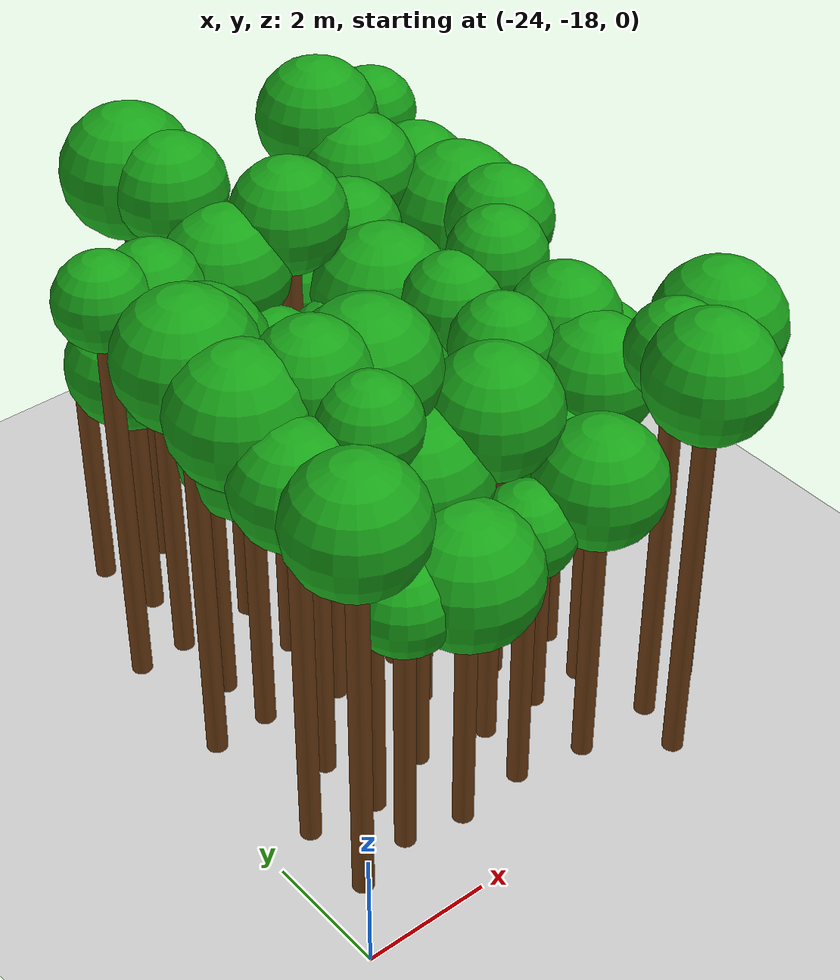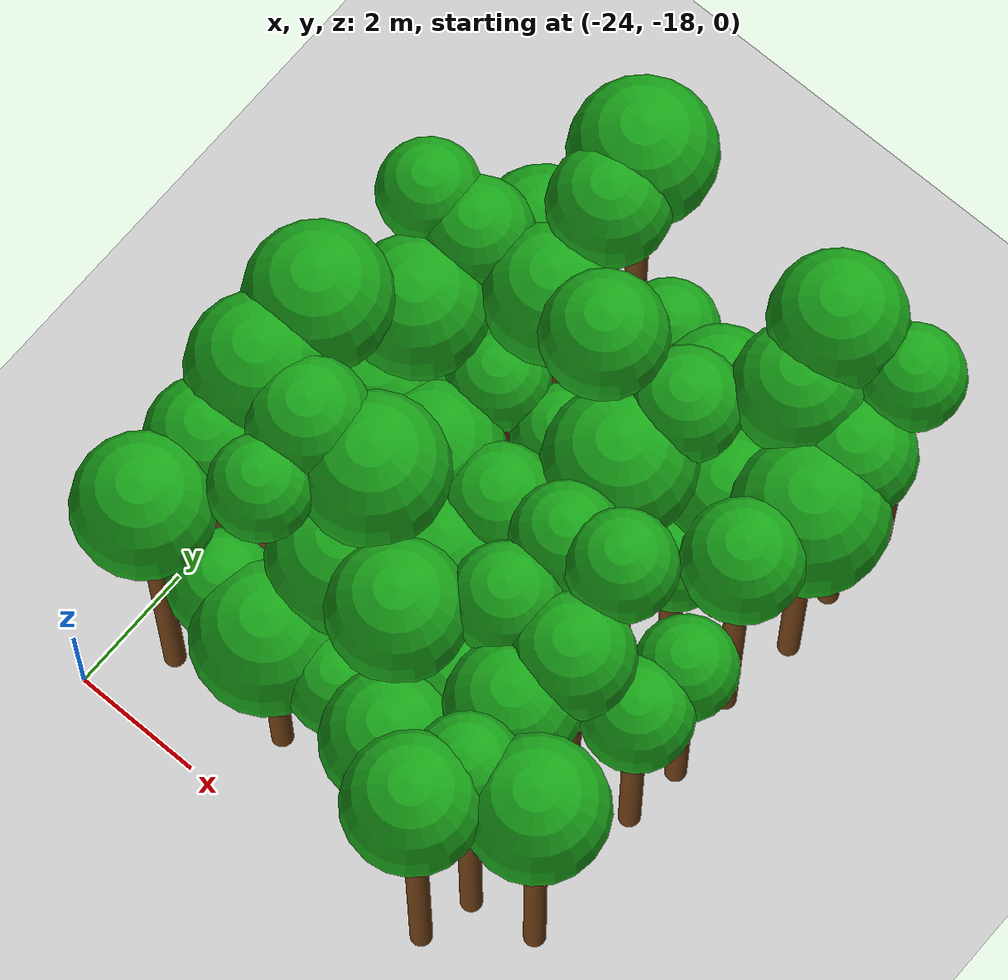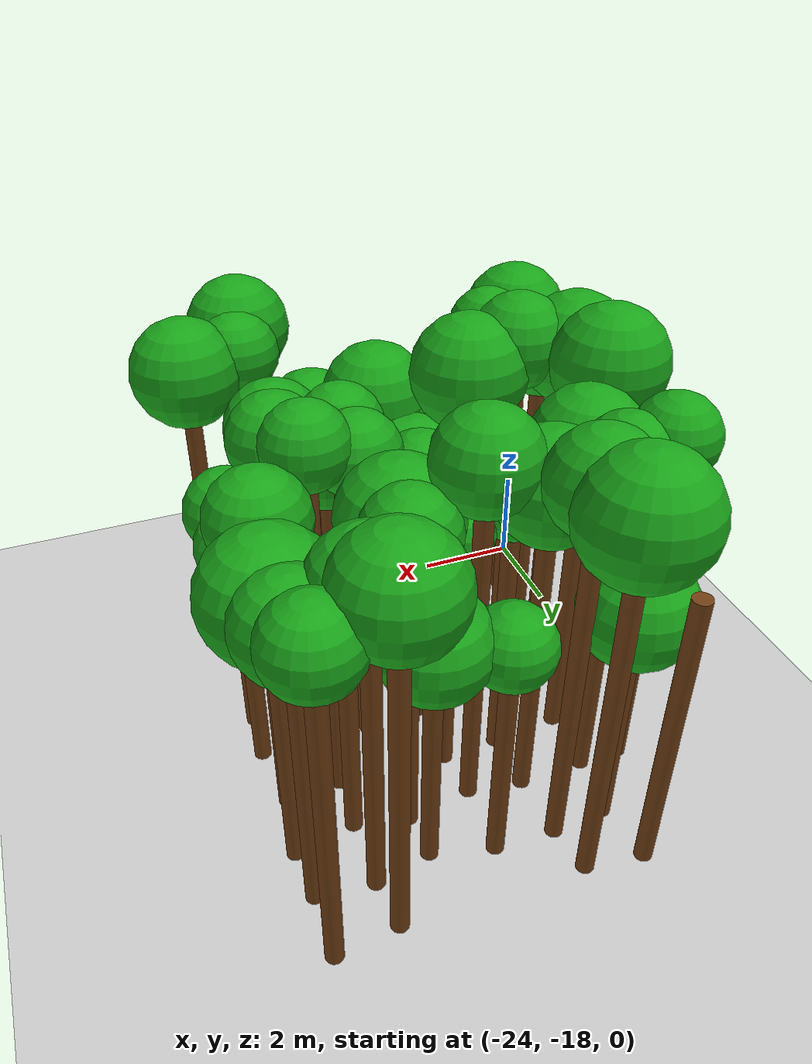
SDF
<sdf version="1.6">
 <world name="forest_world">
  <include><uri>model://sun</uri></include>
  <include><uri>model://ground_plane</uri></include>
  <model name="tree_342_trunk">
   <static>true</static>
   <pose>-23.26 -16.91 3.03 0 0 0</pose>
   <link name="link">
    <collision name="collision">
     <geometry><cylinder><radius>0.16</radius><length>6.07</length></cylinder></geometry>
    </collision>
    <visual name="visual">
     <geometry><cylinder><radius>0.16</radius><length>6.07</length></cylinder></geometry>
     <material><ambient>0.35 0.20 0.05 1</ambient><diffuse>0.45 0.25 0.08 1</diffuse></material>
    </visual>
   </link>
  </model>
  <model name="tree_342_leaf">
   <static>true</static>
   <pose>-23.26 -16.91 6.66 0 0 0</pose>
   <link name="link">
    <collision name="collision"><geometry><sphere><radius>0.98</radius></sphere></geometry></collision>
    <visual name="visual">
     <geometry><sphere><radius>0.98</radius></sphere></geometry>
     <material><ambient>0.05 0.45 0.05 1</ambient><diffuse>0.10 0.65 0.10 1</diffuse></material>
    </visual>
   </link>
  </model>
  <model name="tree_343_trunk">
   <static>true</static>
   <pose>-23.24 -15.67 2.97 0 0 0</pose>
   <link name="link">
    <collision name="collision">
     <geometry><cylinder><radius>0.16</radius><length>5.94</length></cylinder></geometry>
    </collision>
    <visual name="visual">
     <geometry><cylinder><radius>0.16</radius><length>5.94</length></cylinder></geometry>
     <material><ambient>0.35 0.20 0.05 1</ambient><diffuse>0.45 0.25 0.08 1</diffuse></material>
    </visual>
   </link>
  </model>
  <model name="tree_343_leaf">
   <static>true</static>
   <pose>-23.24 -15.67 6.48 0 0 0</pose>
   <link name="link">
    <collision name="collision"><geometry><sphere><radius>0.90</radius></sphere></geometry></collision>
    <visual name="visual">
     <geometry><sphere><radius>0.90</radius></sphere></geometry>
     <material><ambient>0.05 0.45 0.05 1</ambient><diffuse>0.10 0.65 0.10 1</diffuse></material>
    </visual>
   </link>
  </model>
  <model name="tree_344_leaf">
   <static>true</static>
   <pose>-23.29 -14.58 6.96 0 0 0</pose>
   <link name="link">
    <collision name="collision"><geometry><sphere><radius>1.01</radius></sphere></geometry></collision>
    <visual name="visual">
     <geometry><sphere><radius>1.01</radius></sphere></geometry>
     <material><ambient>0.05 0.45 0.05 1</ambient><diffuse>0.10 0.65 0.10 1</diffuse></material>
    </visual>
   </link>
  </model>
  <model name="tree_345_trunk">
   <static>true</static>
   <pose>-23.29 -13.42 3.29 0 0 0</pose>
   <link name="link">
    <collision name="collision">
     <geometry><cylinder><radius>0.16</radius><length>6.57</length></cylinder></geometry>
    </collision>
    <visual name="visual">
     <geometry><cylinder><radius>0.16</radius><length>6.57</length></cylinder></geometry>
     <material><ambient>0.35 0.20 0.05 1</ambient><diffuse>0.45 0.25 0.08 1</diffuse></material>
    </visual>
   </link>
  </model>
  <model name="tree_345_leaf">
   <static>true</static>
   <pose>-23.29 -13.42 7.18 0 0 0</pose>
   <link name="link">
    <collision name="collision"><geometry><sphere><radius>1.02</radius></sphere></geometry></collision>
    <visual name="visual">
     <geometry><sphere><radius>1.02</radius></sphere></geometry>
     <material><ambient>0.05 0.45 0.05 1</ambient><diffuse>0.10 0.65 0.10 1</diffuse></material>
    </visual>
   </link>
  </model>
  <model name="tree_347_trunk">
   <static>true</static>
   <pose>-23.22 -11.30 3.25 0 0 0</pose>
   <link name="link">
    <collision name="collision">
     <geometry><cylinder><radius>0.16</radius><length>6.51</length></cylinder></geometry>
    </collision>
    <visual name="visual">
     <geometry><cylinder><radius>0.16</radius><length>6.51</length></cylinder></geometry>
     <material><ambient>0.35 0.20 0.05 1</ambient><diffuse>0.45 0.25 0.08 1</diffuse></material>
    </visual>
   </link>
  </model>
  <model name="tree_347_leaf">
   <static>true</static>
   <pose>-23.22 -11.30 6.94 0 0 0</pose>
   <link name="link">
    <collision name="collision"><geometry><sphere><radius>0.72</radius></sphere></geometry></collision>
    <visual name="visual">
     <geometry><sphere><radius>0.72</radius></sphere></geometry>
     <material><ambient>0.05 0.45 0.05 1</ambient><diffuse>0.10 0.65 0.10 1</diffuse></material>
    </visual>
   </link>
  </model>
  <model name="tree_397_trunk">
   <static>true</static>
   <pose>-22.28 -16.64 2.09 0 0 0</pose>
   <link name="link">
    <collision name="collision">
     <geometry><cylinder><radius>0.16</radius><length>4.17</length></cylinder></geometry>
    </collision>
    <visual name="visual">
     <geometry><cylinder><radius>0.16</radius><length>4.17</length></cylinder></geometry>
     <material><ambient>0.35 0.20 0.05 1</ambient><diffuse>0.45 0.25 0.08 1</diffuse></material>
    </visual>
   </link>
  </model>
  <model name="tree_397_leaf">
   <static>true</static>
   <pose>-22.28 -16.64 4.64 0 0 0</pose>
   <link name="link">
    <collision name="collision"><geometry><sphere><radius>0.77</radius></sphere></geometry></collision>
    <visual name="visual">
     <geometry><sphere><radius>0.77</radius></sphere></geometry>
     <material><ambient>0.05 0.45 0.05 1</ambient><diffuse>0.10 0.65 0.10 1</diffuse></material>
    </visual>
   </link>
  </model>
  <model name="tree_398_trunk">
   <static>true</static>
   <pose>-22.18 -15.83 3.29 0 0 0</pose>
   <link name="link">
    <collision name="collision">
     <geometry><cylinder><radius>0.16</radius><length>6.58</length></cylinder></geometry>
    </collision>
    <visual name="visual">
     <geometry><cylinder><radius>0.16</radius><length>6.58</length></cylinder></geometry>
     <material><ambient>0.35 0.20 0.05 1</ambient><diffuse>0.45 0.25 0.08 1</diffuse></material>
    </visual>
   </link>
  </model>
  <model name="tree_398_leaf">
   <static>true</static>
   <pose>-22.18 -15.83 7.01 0 0 0</pose>
   <link name="link">
    <collision name="collision"><geometry><sphere><radius>0.72</radius></sphere></geometry></collision>
    <visual name="visual">
     <geometry><sphere><radius>0.72</radius></sphere></geometry>
     <material><ambient>0.05 0.45 0.05 1</ambient><diffuse>0.10 0.65 0.10 1</diffuse></material>
    </visual>
   </link>
  </model>
  <model name="tree_399_trunk">
   <static>true</static>
   <pose>-22.28 -14.77 3.34 0 0 0</pose>
   <link name="link">
    <collision name="collision">
     <geometry><cylinder><radius>0.16</radius><length>6.67</length></cylinder></geometry>
    </collision>
    <visual name="visual">
     <geometry><cylinder><radius>0.16</radius><length>6.67</length></cylinder></geometry>
     <material><ambient>0.35 0.20 0.05 1</ambient><diffuse>0.45 0.25 0.08 1</diffuse></material>
    </visual>
   </link>
  </model>
  <model name="tree_399_leaf">
   <static>true</static>
   <pose>-22.28 -14.77 7.18 0 0 0</pose>
   <link name="link">
    <collision name="collision"><geometry><sphere><radius>0.85</radius></sphere></geometry></collision>
    <visual name="visual">
     <geometry><sphere><radius>0.85</radius></sphere></geometry>
     <material><ambient>0.05 0.45 0.05 1</ambient><diffuse>0.10 0.65 0.10 1</diffuse></material>
    </visual>
   </link>
  </model>
  <model name="tree_400_trunk">
   <static>true</static>
   <pose>-22.37 -13.39 2.30 0 0 0</pose>
   <link name="link">
    <collision name="collision">
     <geometry><cylinder><radius>0.16</radius><length>4.61</length></cylinder></geometry>
    </collision>
    <visual name="visual">
     <geometry><cylinder><radius>0.16</radius><length>4.61</length></cylinder></geometry>
     <material><ambient>0.35 0.20 0.05 1</ambient><diffuse>0.45 0.25 0.08 1</diffuse></material>
    </visual>
   </link>
  </model>
  <model name="tree_400_leaf">
   <static>true</static>
   <pose>-22.37 -13.39 5.23 0 0 0</pose>
   <link name="link">
    <collision name="collision"><geometry><sphere><radius>1.04</radius></sphere></geometry></collision>
    <visual name="visual">
     <geometry><sphere><radius>1.04</radius></sphere></geometry>
     <material><ambient>0.05 0.45 0.05 1</ambient><diffuse>0.10 0.65 0.10 1</diffuse></material>
    </visual>
   </link>
  </model>
  <model name="tree_401_trunk">
   <static>true</static>
   <pose>-22.44 -12.47 2.89 0 0 0</pose>
   <link name="link">
    <collision name="collision">
     <geometry><cylinder><radius>0.16</radius><length>5.77</length></cylinder></geometry>
    </collision>
    <visual name="visual">
     <geometry><cylinder><radius>0.16</radius><length>5.77</length></cylinder></geometry>
     <material><ambient>0.35 0.20 0.05 1</ambient><diffuse>0.45 0.25 0.08 1</diffuse></material>
    </visual>
   </link>
  </model>
  <model name="tree_401_leaf">
   <static>true</static>
   <pose>-22.44 -12.47 6.36 0 0 0</pose>
   <link name="link">
    <collision name="collision"><geometry><sphere><radius>0.99</radius></sphere></geometry></collision>
    <visual name="visual">
     <geometry><sphere><radius>0.99</radius></sphere></geometry>
     <material><ambient>0.05 0.45 0.05 1</ambient><diffuse>0.10 0.65 0.10 1</diffuse></material>
    </visual>
   </link>
  </model>
  <model name="tree_402_trunk">
   <static>true</static>
   <pose>-22.41 -11.28 3.12 0 0 0</pose>
   <link name="link">
    <collision name="collision">
     <geometry><cylinder><radius>0.16</radius><length>6.25</length></cylinder></geometry>
    </collision>
    <visual name="visual">
     <geometry><cylinder><radius>0.16</radius><length>6.25</length></cylinder></geometry>
     <material><ambient>0.35 0.20 0.05 1</ambient><diffuse>0.45 0.25 0.08 1</diffuse></material>
    </visual>
   </link>
  </model>
  <model name="tree_402_leaf">
   <static>true</static>
   <pose>-22.41 -11.28 6.72 0 0 0</pose>
   <link name="link">
    <collision name="collision"><geometry><sphere><radius>0.78</radius></sphere></geometry></collision>
    <visual name="visual">
     <geometry><sphere><radius>0.78</radius></sphere></geometry>
     <material><ambient>0.05 0.45 0.05 1</ambient><diffuse>0.10 0.65 0.10 1</diffuse></material>
    </visual>
   </link>
  </model>
  <model name="tree_403_trunk">
   <static>true</static>
   <pose>-22.22 -10.14 2.07 0 0 0</pose>
   <link name="link">
    <collision name="collision">
     <geometry><cylinder><radius>0.16</radius><length>4.15</length></cylinder></geometry>
    </collision>
    <visual name="visual">
     <geometry><cylinder><radius>0.16</radius><length>4.15</length></cylinder></geometry>
     <material><ambient>0.35 0.20 0.05 1</ambient><diffuse>0.45 0.25 0.08 1</diffuse></material>
    </visual>
   </link>
  </model>
  <model name="tree_403_leaf">
   <static>true</static>
   <pose>-22.22 -10.14 4.74 0 0 0</pose>
   <link name="link">
    <collision name="collision"><geometry><sphere><radius>0.98</radius></sphere></geometry></collision>
    <visual name="visual">
     <geometry><sphere><radius>0.98</radius></sphere></geometry>
     <material><ambient>0.05 0.45 0.05 1</ambient><diffuse>0.10 0.65 0.10 1</diffuse></material>
    </visual>
   </link>
  </model>
  <model name="tree_404_trunk">
   <static>true</static>
   <pose>-22.42 -9.04 2.87 0 0 0</pose>
   <link name="link">
    <collision name="collision">
     <geometry><cylinder><radius>0.16</radius><length>5.74</length></cylinder></geometry>
    </collision>
    <visual name="visual">
     <geometry><cylinder><radius>0.16</radius><length>5.74</length></cylinder></geometry>
     <material><ambient>0.35 0.20 0.05 1</ambient><diffuse>0.45 0.25 0.08 1</diffuse></material>
    </visual>
   </link>
  </model>
  <model name="tree_452_trunk">
   <static>true</static>
   <pose>-21.34 -16.81 2.02 0 0 0</pose>
   <link name="link">
    <collision name="collision">
     <geometry><cylinder><radius>0.16</radius><length>4.05</length></cylinder></geometry>
    </collision>
    <visual name="visual">
     <geometry><cylinder><radius>0.16</radius><length>4.05</length></cylinder></geometry>
     <material><ambient>0.35 0.20 0.05 1</ambient><diffuse>0.45 0.25 0.08 1</diffuse></material>
    </visual>
   </link>
  </model>
  <model name="tree_452_leaf">
   <static>true</static>
   <pose>-21.34 -16.81 4.68 0 0 0</pose>
   <link name="link">
    <collision name="collision"><geometry><sphere><radius>1.06</radius></sphere></geometry></collision>
    <visual name="visual">
     <geometry><sphere><radius>1.06</radius></sphere></geometry>
     <material><ambient>0.05 0.45 0.05 1</ambient><diffuse>0.10 0.65 0.10 1</diffuse></material>
    </visual>
   </link>
  </model>
  <model name="tree_453_trunk">
   <static>true</static>
   <pose>-21.11 -15.52 2.40 0 0 0</pose>
   <link name="link">
    <collision name="collision">
     <geometry><cylinder><radius>0.16</radius><length>4.80</length></cylinder></geometry>
    </collision>
    <visual name="visual">
     <geometry><cylinder><radius>0.16</radius><length>4.80</length></cylinder></geometry>
     <material><ambient>0.35 0.20 0.05 1</ambient><diffuse>0.45 0.25 0.08 1</diffuse></material>
    </visual>
   </link>
  </model>
  <model name="tree_453_leaf">
   <static>true</static>
   <pose>-21.11 -15.52 5.43 0 0 0</pose>
   <link name="link">
    <collision name="collision"><geometry><sphere><radius>1.05</radius></sphere></geometry></collision>
    <visual name="visual">
     <geometry><sphere><radius>1.05</radius></sphere></geometry>
     <material><ambient>0.05 0.45 0.05 1</ambient><diffuse>0.10 0.65 0.10 1</diffuse></material>
    </visual>
   </link>
  </model>
  <model name="tree_454_trunk">
   <static>true</static>
   <pose>-21.30 -14.66 3.09 0 0 0</pose>
   <link name="link">
    <collision name="collision">
     <geometry><cylinder><radius>0.16</radius><length>6.17</length></cylinder></geometry>
    </collision>
    <visual name="visual">
     <geometry><cylinder><radius>0.16</radius><length>6.17</length></cylinder></geometry>
     <material><ambient>0.35 0.20 0.05 1</ambient><diffuse>0.45 0.25 0.08 1</diffuse></material>
    </visual>
   </link>
  </model>
  <model name="tree_454_leaf">
   <static>true</static>
   <pose>-21.30 -14.66 6.80 0 0 0</pose>
   <link name="link">
    <collision name="collision"><geometry><sphere><radius>1.04</radius></sphere></geometry></collision>
    <visual name="visual">
     <geometry><sphere><radius>1.04</radius></sphere></geometry>
     <material><ambient>0.05 0.45 0.05 1</ambient><diffuse>0.10 0.65 0.10 1</diffuse></material>
    </visual>
   </link>
  </model>
  <model name="tree_455_trunk">
   <static>true</static>
   <pose>-21.20 -13.65 2.37 0 0 0</pose>
   <link name="link">
    <collision name="collision">
     <geometry><cylinder><radius>0.16</radius><length>4.74</length></cylinder></geometry>
    </collision>
    <visual name="visual">
     <geometry><cylinder><radius>0.16</radius><length>4.74</length></cylinder></geometry>
     <material><ambient>0.35 0.20 0.05 1</ambient><diffuse>0.45 0.25 0.08 1</diffuse></material>
    </visual>
   </link>
  </model>
  <model name="tree_455_leaf">
   <static>true</static>
   <pose>-21.20 -13.65 5.35 0 0 0</pose>
   <link name="link">
    <collision name="collision"><geometry><sphere><radius>1.02</radius></sphere></geometry></collision>
    <visual name="visual">
     <geometry><sphere><radius>1.02</radius></sphere></geometry>
     <material><ambient>0.05 0.45 0.05 1</ambient><diffuse>0.10 0.65 0.10 1</diffuse></material>
    </visual>
   </link>
  </model>
  <model name="tree_456_trunk">
   <static>true</static>
   <pose>-21.13 -12.36 2.61 0 0 0</pose>
   <link name="link">
    <collision name="collision">
     <geometry><cylinder><radius>0.16</radius><length>5.23</length></cylinder></geometry>
    </collision>
    <visual name="visual">
     <geometry><cylinder><radius>0.16</radius><length>5.23</length></cylinder></geometry>
     <material><ambient>0.35 0.20 0.05 1</ambient><diffuse>0.45 0.25 0.08 1</diffuse></material>
    </visual>
   </link>
  </model>
  <model name="tree_456_leaf">
   <static>true</static>
   <pose>-21.13 -12.36 5.66 0 0 0</pose>
   <link name="link">
    <collision name="collision"><geometry><sphere><radius>0.71</radius></sphere></geometry></collision>
    <visual name="visual">
     <geometry><sphere><radius>0.71</radius></sphere></geometry>
     <material><ambient>0.05 0.45 0.05 1</ambient><diffuse>0.10 0.65 0.10 1</diffuse></material>
    </visual>
   </link>
  </model>
  <model name="tree_457_trunk">
   <static>true</static>
   <pose>-21.15 -11.25 2.99 0 0 0</pose>
   <link name="link">
    <collision name="collision">
     <geometry><cylinder><radius>0.16</radius><length>5.98</length></cylinder></geometry>
    </collision>
    <visual name="visual">
     <geometry><cylinder><radius>0.16</radius><length>5.98</length></cylinder></geometry>
     <material><ambient>0.35 0.20 0.05 1</ambient><diffuse>0.45 0.25 0.08 1</diffuse></material>
    </visual>
   </link>
  </model>
  <model name="tree_457_leaf">
   <static>true</static>
   <pose>-21.15 -11.25 6.56 0 0 0</pose>
   <link name="link">
    <collision name="collision"><geometry><sphere><radius>0.96</radius></sphere></geometry></collision>
    <visual name="visual">
     <geometry><sphere><radius>0.96</radius></sphere></geometry>
     <material><ambient>0.05 0.45 0.05 1</ambient><diffuse>0.10 0.65 0.10 1</diffuse></material>
    </visual>
   </link>
  </model>
  <model name="tree_458_trunk">
   <static>true</static>
   <pose>-21.20 -10.04 3.41 0 0 0</pose>
   <link name="link">
    <collision name="collision">
     <geometry><cylinder><radius>0.16</radius><length>6.82</length></cylinder></geometry>
    </collision>
    <visual name="visual">
     <geometry><cylinder><radius>0.16</radius><length>6.82</length></cylinder></geometry>
     <material><ambient>0.35 0.20 0.05 1</ambient><diffuse>0.45 0.25 0.08 1</diffuse></material>
    </visual>
   </link>
  </model>
  <model name="tree_458_leaf">
   <static>true</static>
   <pose>-21.20 -10.04 7.33 0 0 0</pose>
   <link name="link">
    <collision name="collision"><geometry><sphere><radius>0.85</radius></sphere></geometry></collision>
    <visual name="visual">
     <geometry><sphere><radius>0.85</radius></sphere></geometry>
     <material><ambient>0.05 0.45 0.05 1</ambient><diffuse>0.10 0.65 0.10 1</diffuse></material>
    </visual>
   </link>
  </model>
  <model name="tree_459_trunk">
   <static>true</static>
   <pose>-21.35 -9.18 3.34 0 0 0</pose>
   <link name="link">
    <collision name="collision">
     <geometry><cylinder><radius>0.16</radius><length>6.68</length></cylinder></geometry>
    </collision>
    <visual name="visual">
     <geometry><cylinder><radius>0.16</radius><length>6.68</length></cylinder></geometry>
     <material><ambient>0.35 0.20 0.05 1</ambient><diffuse>0.45 0.25 0.08 1</diffuse></material>
    </visual>
   </link>
  </model>
  <model name="tree_459_leaf">
   <static>true</static>
   <pose>-21.35 -9.18 7.29 0 0 0</pose>
   <link name="link">
    <collision name="collision"><geometry><sphere><radius>1.02</radius></sphere></geometry></collision>
    <visual name="visual">
     <geometry><sphere><radius>1.02</radius></sphere></geometry>
     <material><ambient>0.05 0.45 0.05 1</ambient><diffuse>0.10 0.65 0.10 1</diffuse></material>
    </visual>
   </link>
  </model>
  <model name="tree_507_trunk">
   <static>true</static>
   <pose>-20.20 -16.71 2.17 0 0 0</pose>
   <link name="link">
    <collision name="collision">
     <geometry><cylinder><radius>0.16</radius><length>4.35</length></cylinder></geometry>
    </collision>
    <visual name="visual">
     <geometry><cylinder><radius>0.16</radius><length>4.35</length></cylinder></geometry>
     <material><ambient>0.35 0.20 0.05 1</ambient><diffuse>0.45 0.25 0.08 1</diffuse></material>
    </visual>
   </link>
  </model>
  <model name="tree_507_leaf">
   <static>true</static>
   <pose>-20.20 -16.71 4.77 0 0 0</pose>
   <link name="link">
    <collision name="collision"><geometry><sphere><radius>0.71</radius></sphere></geometry></collision>
    <visual name="visual">
     <geometry><sphere><radius>0.71</radius></sphere></geometry>
     <material><ambient>0.05 0.45 0.05 1</ambient><diffuse>0.10 0.65 0.10 1</diffuse></material>
    </visual>
   </link>
  </model>
  <model name="tree_508_trunk">
   <static>true</static>
   <pose>-19.97 -15.73 2.75 0 0 0</pose>
   <link name="link">
    <collision name="collision">
     <geometry><cylinder><radius>0.16</radius><length>5.51</length></cylinder></geometry>
    </collision>
    <visual name="visual">
     <geometry><cylinder><radius>0.16</radius><length>5.51</length></cylinder></geometry>
     <material><ambient>0.35 0.20 0.05 1</ambient><diffuse>0.45 0.25 0.08 1</diffuse></material>
    </visual>
   </link>
  </model>
  <model name="tree_508_leaf">
   <static>true</static>
   <pose>-19.97 -15.73 6.09 0 0 0</pose>
   <link name="link">
    <collision name="collision"><geometry><sphere><radius>0.97</radius></sphere></geometry></collision>
    <visual name="visual">
     <geometry><sphere><radius>0.97</radius></sphere></geometry>
     <material><ambient>0.05 0.45 0.05 1</ambient><diffuse>0.10 0.65 0.10 1</diffuse></material>
    </visual>
   </link>
  </model>
  <model name="tree_509_trunk">
   <static>true</static>
   <pose>-20.24 -14.55 2.19 0 0 0</pose>
   <link name="link">
    <collision name="collision">
     <geometry><cylinder><radius>0.16</radius><length>4.38</length></cylinder></geometry>
    </collision>
    <visual name="visual">
     <geometry><cylinder><radius>0.16</radius><length>4.38</length></cylinder></geometry>
     <material><ambient>0.35 0.20 0.05 1</ambient><diffuse>0.45 0.25 0.08 1</diffuse></material>
    </visual>
   </link>
  </model>
  <model name="tree_509_leaf">
   <static>true</static>
   <pose>-20.24 -14.55 5.04 0 0 0</pose>
   <link name="link">
    <collision name="collision"><geometry><sphere><radius>1.10</radius></sphere></geometry></collision>
    <visual name="visual">
     <geometry><sphere><radius>1.10</radius></sphere></geometry>
     <material><ambient>0.05 0.45 0.05 1</ambient><diffuse>0.10 0.65 0.10 1</diffuse></material>
    </visual>
   </link>
  </model>
  <model name="tree_510_trunk">
   <static>true</static>
   <pose>-20.03 -13.64 2.54 0 0 0</pose>
   <link name="link">
    <collision name="collision">
     <geometry><cylinder><radius>0.16</radius><length>5.07</length></cylinder></geometry>
    </collision>
    <visual name="visual">
     <geometry><cylinder><radius>0.16</radius><length>5.07</length></cylinder></geometry>
     <material><ambient>0.35 0.20 0.05 1</ambient><diffuse>0.45 0.25 0.08 1</diffuse></material>
    </visual>
   </link>
  </model>
  <model name="tree_510_leaf">
   <static>true</static>
   <pose>-20.03 -13.64 5.57 0 0 0</pose>
   <link name="link">
    <collision name="collision"><geometry><sphere><radius>0.82</radius></sphere></geometry></collision>
    <visual name="visual">
     <geometry><sphere><radius>0.82</radius></sphere></geometry>
     <material><ambient>0.05 0.45 0.05 1</ambient><diffuse>0.10 0.65 0.10 1</diffuse></material>
    </visual>
   </link>
  </model>
  <model name="tree_511_trunk">
   <static>true</static>
   <pose>-20.04 -12.32 2.44 0 0 0</pose>
   <link name="link">
    <collision name="collision">
     <geometry><cylinder><radius>0.16</radius><length>4.88</length></cylinder></geometry>
    </collision>
    <visual name="visual">
     <geometry><cylinder><radius>0.16</radius><length>4.88</length></cylinder></geometry>
     <material><ambient>0.35 0.20 0.05 1</ambient><diffuse>0.45 0.25 0.08 1</diffuse></material>
    </visual>
   </link>
  </model>
  <model name="tree_511_leaf">
   <static>true</static>
   <pose>-20.04 -12.32 5.32 0 0 0</pose>
   <link name="link">
    <collision name="collision"><geometry><sphere><radius>0.72</radius></sphere></geometry></collision>
    <visual name="visual">
     <geometry><sphere><radius>0.72</radius></sphere></geometry>
     <material><ambient>0.05 0.45 0.05 1</ambient><diffuse>0.10 0.65 0.10 1</diffuse></material>
    </visual>
   </link>
  </model>
  <model name="tree_512_trunk">
   <static>true</static>
   <pose>-20.14 -11.41 3.30 0 0 0</pose>
   <link name="link">
    <collision name="collision">
     <geometry><cylinder><radius>0.16</radius><length>6.61</length></cylinder></geometry>
    </collision>
    <visual name="visual">
     <geometry><cylinder><radius>0.16</radius><length>6.61</length></cylinder></geometry>
     <material><ambient>0.35 0.20 0.05 1</ambient><diffuse>0.45 0.25 0.08 1</diffuse></material>
    </visual>
   </link>
  </model>
  <model name="tree_512_leaf">
   <static>true</static>
   <pose>-20.14 -11.41 7.13 0 0 0</pose>
   <link name="link">
    <collision name="collision"><geometry><sphere><radius>0.87</radius></sphere></geometry></collision>
    <visual name="visual">
     <geometry><sphere><radius>0.87</radius></sphere></geometry>
     <material><ambient>0.05 0.45 0.05 1</ambient><diffuse>0.10 0.65 0.10 1</diffuse></material>
    </visual>
   </link>
  </model>
  <model name="tree_513_trunk">
   <static>true</static>
   <pose>-20.07 -10.08 2.15 0 0 0</pose>
   <link name="link">
    <collision name="collision">
     <geometry><cylinder><radius>0.16</radius><length>4.29</length></cylinder></geometry>
    </collision>
    <visual name="visual">
     <geometry><cylinder><radius>0.16</radius><length>4.29</length></cylinder></geometry>
     <material><ambient>0.35 0.20 0.05 1</ambient><diffuse>0.45 0.25 0.08 1</diffuse></material>
    </visual>
   </link>
  </model>
  <model name="tree_513_leaf">
   <static>true</static>
   <pose>-20.07 -10.08 4.72 0 0 0</pose>
   <link name="link">
    <collision name="collision"><geometry><sphere><radius>0.71</radius></sphere></geometry></collision>
    <visual name="visual">
     <geometry><sphere><radius>0.71</radius></sphere></geometry>
     <material><ambient>0.05 0.45 0.05 1</ambient><diffuse>0.10 0.65 0.10 1</diffuse></material>
    </visual>
   </link>
  </model>
  <model name="tree_562_trunk">
   <static>true</static>
   <pose>-19.09 -16.92 2.30 0 0 0</pose>
   <link name="link">
    <collision name="collision">
     <geometry><cylinder><radius>0.16</radius><length>4.60</length></cylinder></geometry>
    </collision>
    <visual name="visual">
     <geometry><cylinder><radius>0.16</radius><length>4.60</length></cylinder></geometry>
     <material><ambient>0.35 0.20 0.05 1</ambient><diffuse>0.45 0.25 0.08 1</diffuse></material>
    </visual>
   </link>
  </model>
  <model name="tree_562_leaf">
   <static>true</static>
   <pose>-19.09 -16.92 5.17 0 0 0</pose>
   <link name="link">
    <collision name="collision"><geometry><sphere><radius>0.96</radius></sphere></geometry></collision>
    <visual name="visual">
     <geometry><sphere><radius>0.96</radius></sphere></geometry>
     <material><ambient>0.05 0.45 0.05 1</ambient><diffuse>0.10 0.65 0.10 1</diffuse></material>
    </visual>
   </link>
  </model>
  <model name="tree_563_trunk">
   <static>true</static>
   <pose>-18.96 -15.69 2.19 0 0 0</pose>
   <link name="link">
    <collision name="collision">
     <geometry><cylinder><radius>0.16</radius><length>4.39</length></cylinder></geometry>
    </collision>
    <visual name="visual">
     <geometry><cylinder><radius>0.16</radius><length>4.39</length></cylinder></geometry>
     <material><ambient>0.35 0.20 0.05 1</ambient><diffuse>0.45 0.25 0.08 1</diffuse></material>
    </visual>
   </link>
  </model>
  <model name="tree_563_leaf">
   <static>true</static>
   <pose>-18.96 -15.69 4.93 0 0 0</pose>
   <link name="link">
    <collision name="collision"><geometry><sphere><radius>0.91</radius></sphere></geometry></collision>
    <visual name="visual">
     <geometry><sphere><radius>0.91</radius></sphere></geometry>
     <material><ambient>0.05 0.45 0.05 1</ambient><diffuse>0.10 0.65 0.10 1</diffuse></material>
    </visual>
   </link>
  </model>
  <model name="tree_564_trunk">
   <static>true</static>
   <pose>-18.98 -14.74 2.85 0 0 0</pose>
   <link name="link">
    <collision name="collision">
     <geometry><cylinder><radius>0.16</radius><length>5.71</length></cylinder></geometry>
    </collision>
    <visual name="visual">
     <geometry><cylinder><radius>0.16</radius><length>5.71</length></cylinder></geometry>
     <material><ambient>0.35 0.20 0.05 1</ambient><diffuse>0.45 0.25 0.08 1</diffuse></material>
    </visual>
   </link>
  </model>
  <model name="tree_564_leaf">
   <static>true</static>
   <pose>-18.98 -14.74 6.17 0 0 0</pose>
   <link name="link">
    <collision name="collision"><geometry><sphere><radius>0.77</radius></sphere></geometry></collision>
    <visual name="visual">
     <geometry><sphere><radius>0.77</radius></sphere></geometry>
     <material><ambient>0.05 0.45 0.05 1</ambient><diffuse>0.10 0.65 0.10 1</diffuse></material>
    </visual>
   </link>
  </model>
  <model name="tree_565_trunk">
   <static>true</static>
   <pose>-18.91 -13.62 2.90 0 0 0</pose>
   <link name="link">
    <collision name="collision">
     <geometry><cylinder><radius>0.16</radius><length>5.80</length></cylinder></geometry>
    </collision>
    <visual name="visual">
     <geometry><cylinder><radius>0.16</radius><length>5.80</length></cylinder></geometry>
     <material><ambient>0.35 0.20 0.05 1</ambient><diffuse>0.45 0.25 0.08 1</diffuse></material>
    </visual>
   </link>
  </model>
  <model name="tree_565_leaf">
   <static>true</static>
   <pose>-18.91 -13.62 6.26 0 0 0</pose>
   <link name="link">
    <collision name="collision"><geometry><sphere><radius>0.76</radius></sphere></geometry></collision>
    <visual name="visual">
     <geometry><sphere><radius>0.76</radius></sphere></geometry>
     <material><ambient>0.05 0.45 0.05 1</ambient><diffuse>0.10 0.65 0.10 1</diffuse></material>
    </visual>
   </link>
  </model>
  <model name="tree_566_trunk">
   <static>true</static>
   <pose>-19.13 -12.27 2.59 0 0 0</pose>
   <link name="link">
    <collision name="collision">
     <geometry><cylinder><radius>0.16</radius><length>5.19</length></cylinder></geometry>
    </collision>
    <visual name="visual">
     <geometry><cylinder><radius>0.16</radius><length>5.19</length></cylinder></geometry>
     <material><ambient>0.35 0.20 0.05 1</ambient><diffuse>0.45 0.25 0.08 1</diffuse></material>
    </visual>
   </link>
  </model>
  <model name="tree_566_leaf">
   <static>true</static>
   <pose>-19.13 -12.27 5.82 0 0 0</pose>
   <link name="link">
    <collision name="collision"><geometry><sphere><radius>1.06</radius></sphere></geometry></collision>
    <visual name="visual">
     <geometry><sphere><radius>1.06</radius></sphere></geometry>
     <material><ambient>0.05 0.45 0.05 1</ambient><diffuse>0.10 0.65 0.10 1</diffuse></material>
    </visual>
   </link>
  </model>
  <model name="tree_567_trunk">
   <static>true</static>
   <pose>-18.89 -11.21 2.90 0 0 0</pose>
   <link name="link">
    <collision name="collision">
     <geometry><cylinder><radius>0.16</radius><length>5.81</length></cylinder></geometry>
    </collision>
    <visual name="visual">
     <geometry><cylinder><radius>0.16</radius><length>5.81</length></cylinder></geometry>
     <material><ambient>0.35 0.20 0.05 1</ambient><diffuse>0.45 0.25 0.08 1</diffuse></material>
    </visual>
   </link>
  </model>
  <model name="tree_567_leaf">
   <static>true</static>
   <pose>-18.89 -11.21 6.28 0 0 0</pose>
   <link name="link">
    <collision name="collision"><geometry><sphere><radius>0.79</radius></sphere></geometry></collision>
    <visual name="visual">
     <geometry><sphere><radius>0.79</radius></sphere></geometry>
     <material><ambient>0.05 0.45 0.05 1</ambient><diffuse>0.10 0.65 0.10 1</diffuse></material>
    </visual>
   </link>
  </model>
  <model name="tree_568_trunk">
   <static>true</static>
   <pose>-18.95 -10.38 2.14 0 0 0</pose>
   <link name="link">
    <collision name="collision">
     <geometry><cylinder><radius>0.16</radius><length>4.28</length></cylinder></geometry>
    </collision>
    <visual name="visual">
     <geometry><cylinder><radius>0.16</radius><length>4.28</length></cylinder></geometry>
     <material><ambient>0.35 0.20 0.05 1</ambient><diffuse>0.45 0.25 0.08 1</diffuse></material>
    </visual>
   </link>
  </model>
  <model name="tree_568_leaf">
   <static>true</static>
   <pose>-18.95 -10.38 4.85 0 0 0</pose>
   <link name="link">
    <collision name="collision"><geometry><sphere><radius>0.94</radius></sphere></geometry></collision>
    <visual name="visual">
     <geometry><sphere><radius>0.94</radius></sphere></geometry>
     <material><ambient>0.05 0.45 0.05 1</ambient><diffuse>0.10 0.65 0.10 1</diffuse></material>
    </visual>
   </link>
  </model>
  <model name="tree_616_trunk">
   <static>true</static>
   <pose>-17.99 -17.73 3.16 0 0 0</pose>
   <link name="link">
    <collision name="collision">
     <geometry><cylinder><radius>0.16</radius><length>6.32</length></cylinder></geometry>
    </collision>
    <visual name="visual">
     <geometry><cylinder><radius>0.16</radius><length>6.32</length></cylinder></geometry>
     <material><ambient>0.35 0.20 0.05 1</ambient><diffuse>0.45 0.25 0.08 1</diffuse></material>
    </visual>
   </link>
  </model>
  <model name="tree_616_leaf">
   <static>true</static>
   <pose>-17.99 -17.73 6.88 0 0 0</pose>
   <link name="link">
    <collision name="collision"><geometry><sphere><radius>0.94</radius></sphere></geometry></collision>
    <visual name="visual">
     <geometry><sphere><radius>0.94</radius></sphere></geometry>
     <material><ambient>0.05 0.45 0.05 1</ambient><diffuse>0.10 0.65 0.10 1</diffuse></material>
    </visual>
   </link>
  </model>
  <model name="tree_617_trunk">
   <static>true</static>
   <pose>-17.78 -16.91 3.15 0 0 0</pose>
   <link name="link">
    <collision name="collision">
     <geometry><cylinder><radius>0.16</radius><length>6.30</length></cylinder></geometry>
    </collision>
    <visual name="visual">
     <geometry><cylinder><radius>0.16</radius><length>6.30</length></cylinder></geometry>
     <material><ambient>0.35 0.20 0.05 1</ambient><diffuse>0.45 0.25 0.08 1</diffuse></material>
    </visual>
   </link>
  </model>
  <model name="tree_617_leaf">
   <static>true</static>
   <pose>-17.78 -16.91 6.75 0 0 0</pose>
   <link name="link">
    <collision name="collision"><geometry><sphere><radius>0.74</radius></sphere></geometry></collision>
    <visual name="visual">
     <geometry><sphere><radius>0.74</radius></sphere></geometry>
     <material><ambient>0.05 0.45 0.05 1</ambient><diffuse>0.10 0.65 0.10 1</diffuse></material>
    </visual>
   </link>
  </model>
  <model name="tree_618_trunk">
   <static>true</static>
   <pose>-18.06 -15.69 2.62 0 0 0</pose>
   <link name="link">
    <collision name="collision">
     <geometry><cylinder><radius>0.16</radius><length>5.23</length></cylinder></geometry>
    </collision>
    <visual name="visual">
     <geometry><cylinder><radius>0.16</radius><length>5.23</length></cylinder></geometry>
     <material><ambient>0.35 0.20 0.05 1</ambient><diffuse>0.45 0.25 0.08 1</diffuse></material>
    </visual>
   </link>
  </model>
  <model name="tree_618_leaf">
   <static>true</static>
   <pose>-18.06 -15.69 5.78 0 0 0</pose>
   <link name="link">
    <collision name="collision"><geometry><sphere><radius>0.92</radius></sphere></geometry></collision>
    <visual name="visual">
     <geometry><sphere><radius>0.92</radius></sphere></geometry>
     <material><ambient>0.05 0.45 0.05 1</ambient><diffuse>0.10 0.65 0.10 1</diffuse></material>
    </visual>
   </link>
  </model>
  <model name="tree_619_trunk">
   <static>true</static>
   <pose>-17.84 -14.76 2.80 0 0 0</pose>
   <link name="link">
    <collision name="collision">
     <geometry><cylinder><radius>0.16</radius><length>5.61</length></cylinder></geometry>
    </collision>
    <visual name="visual">
     <geometry><cylinder><radius>0.16</radius><length>5.61</length></cylinder></geometry>
     <material><ambient>0.35 0.20 0.05 1</ambient><diffuse>0.45 0.25 0.08 1</diffuse></material>
    </visual>
   </link>
  </model>
  <model name="tree_619_leaf">
   <static>true</static>
   <pose>-17.84 -14.76 6.12 0 0 0</pose>
   <link name="link">
    <collision name="collision"><geometry><sphere><radius>0.85</radius></sphere></geometry></collision>
    <visual name="visual">
     <geometry><sphere><radius>0.85</radius></sphere></geometry>
     <material><ambient>0.05 0.45 0.05 1</ambient><diffuse>0.10 0.65 0.10 1</diffuse></material>
    </visual>
   </link>
  </model>
  <model name="tree_620_trunk">
   <static>true</static>
   <pose>-18.04 -13.54 3.09 0 0 0</pose>
   <link name="link">
    <collision name="collision">
     <geometry><cylinder><radius>0.16</radius><length>6.18</length></cylinder></geometry>
    </collision>
    <visual name="visual">
     <geometry><cylinder><radius>0.16</radius><length>6.18</length></cylinder></geometry>
     <material><ambient>0.35 0.20 0.05 1</ambient><diffuse>0.45 0.25 0.08 1</diffuse></material>
    </visual>
   </link>
  </model>
  <model name="tree_620_leaf">
   <static>true</static>
   <pose>-18.04 -13.54 6.63 0 0 0</pose>
   <link name="link">
    <collision name="collision"><geometry><sphere><radius>0.76</radius></sphere></geometry></collision>
    <visual name="visual">
     <geometry><sphere><radius>0.76</radius></sphere></geometry>
     <material><ambient>0.05 0.45 0.05 1</ambient><diffuse>0.10 0.65 0.10 1</diffuse></material>
    </visual>
   </link>
  </model>
  <model name="tree_621_trunk">
   <static>true</static>
   <pose>-17.98 -12.44 2.03 0 0 0</pose>
   <link name="link">
    <collision name="collision">
     <geometry><cylinder><radius>0.16</radius><length>4.06</length></cylinder></geometry>
    </collision>
    <visual name="visual">
     <geometry><cylinder><radius>0.16</radius><length>4.06</length></cylinder></geometry>
     <material><ambient>0.35 0.20 0.05 1</ambient><diffuse>0.45 0.25 0.08 1</diffuse></material>
    </visual>
   </link>
  </model>
  <model name="tree_621_leaf">
   <static>true</static>
   <pose>-17.98 -12.44 4.50 0 0 0</pose>
   <link name="link">
    <collision name="collision"><geometry><sphere><radius>0.73</radius></sphere></geometry></collision>
    <visual name="visual">
     <geometry><sphere><radius>0.73</radius></sphere></geometry>
     <material><ambient>0.05 0.45 0.05 1</ambient><diffuse>0.10 0.65 0.10 1</diffuse></material>
    </visual>
   </link>
  </model>
  <model name="tree_622_trunk">
   <static>true</static>
   <pose>-17.92 -11.43 2.23 0 0 0</pose>
   <link name="link">
    <collision name="collision">
     <geometry><cylinder><radius>0.16</radius><length>4.47</length></cylinder></geometry>
    </collision>
    <visual name="visual">
     <geometry><cylinder><radius>0.16</radius><length>4.47</length></cylinder></geometry>
     <material><ambient>0.35 0.20 0.05 1</ambient><diffuse>0.45 0.25 0.08 1</diffuse></material>
    </visual>
   </link>
  </model>
  <model name="tree_622_leaf">
   <static>true</static>
   <pose>-17.92 -11.43 5.00 0 0 0</pose>
   <link name="link">
    <collision name="collision"><geometry><sphere><radius>0.90</radius></sphere></geometry></collision>
    <visual name="visual">
     <geometry><sphere><radius>0.90</radius></sphere></geometry>
     <material><ambient>0.05 0.45 0.05 1</ambient><diffuse>0.10 0.65 0.10 1</diffuse></material>
    </visual>
   </link>
  </model>
  <model name="tree_623_trunk">
   <static>true</static>
   <pose>-17.89 -10.14 2.94 0 0 0</pose>
   <link name="link">
    <collision name="collision">
     <geometry><cylinder><radius>0.16</radius><length>5.88</length></cylinder></geometry>
    </collision>
    <visual name="visual">
     <geometry><cylinder><radius>0.16</radius><length>5.88</length></cylinder></geometry>
     <material><ambient>0.35 0.20 0.05 1</ambient><diffuse>0.45 0.25 0.08 1</diffuse></material>
    </visual>
   </link>
  </model>
  <model name="tree_623_leaf">
   <static>true</static>
   <pose>-17.89 -10.14 6.42 0 0 0</pose>
   <link name="link">
    <collision name="collision"><geometry><sphere><radius>0.91</radius></sphere></geometry></collision>
    <visual name="visual">
     <geometry><sphere><radius>0.91</radius></sphere></geometry>
     <material><ambient>0.05 0.45 0.05 1</ambient><diffuse>0.10 0.65 0.10 1</diffuse></material>
    </visual>
   </link>
  </model>
  <model name="tree_624_trunk">
   <static>true</static>
   <pose>-17.98 -9.25 3.21 0 0 0</pose>
   <link name="link">
    <collision name="collision">
     <geometry><cylinder><radius>0.16</radius><length>6.41</length></cylinder></geometry>
    </collision>
    <visual name="visual">
     <geometry><cylinder><radius>0.16</radius><length>6.41</length></cylinder></geometry>
     <material><ambient>0.35 0.20 0.05 1</ambient><diffuse>0.45 0.25 0.08 1</diffuse></material>
    </visual>
   </link>
  </model>
  <model name="tree_624_leaf">
   <static>true</static>
   <pose>-17.98 -9.25 6.99 0 0 0</pose>
   <link name="link">
    <collision name="collision"><geometry><sphere><radius>0.95</radius></sphere></geometry></collision>
    <visual name="visual">
     <geometry><sphere><radius>0.95</radius></sphere></geometry>
     <material><ambient>0.05 0.45 0.05 1</ambient><diffuse>0.10 0.65 0.10 1</diffuse></material>
    </visual>
   </link>
  </model>
  <model name="tree_672_trunk">
   <static>true</static>
   <pose>-16.79 -16.72 3.01 0 0 0</pose>
   <link name="link">
    <collision name="collision">
     <geometry><cylinder><radius>0.16</radius><length>6.03</length></cylinder></geometry>
    </collision>
    <visual name="visual">
     <geometry><cylinder><radius>0.16</radius><length>6.03</length></cylinder></geometry>
     <material><ambient>0.35 0.20 0.05 1</ambient><diffuse>0.45 0.25 0.08 1</diffuse></material>
    </visual>
   </link>
  </model>
  <model name="tree_672_leaf">
   <static>true</static>
   <pose>-16.79 -16.72 6.62 0 0 0</pose>
   <link name="link">
    <collision name="collision"><geometry><sphere><radius>0.98</radius></sphere></geometry></collision>
    <visual name="visual">
     <geometry><sphere><radius>0.98</radius></sphere></geometry>
     <material><ambient>0.05 0.45 0.05 1</ambient><diffuse>0.10 0.65 0.10 1</diffuse></material>
    </visual>
   </link>
  </model>
  <model name="tree_674_trunk">
   <static>true</static>
   <pose>-16.89 -14.56 2.29 0 0 0</pose>
   <link name="link">
    <collision name="collision">
     <geometry><cylinder><radius>0.16</radius><length>4.57</length></cylinder></geometry>
    </collision>
    <visual name="visual">
     <geometry><cylinder><radius>0.16</radius><length>4.57</length></cylinder></geometry>
     <material><ambient>0.35 0.20 0.05 1</ambient><diffuse>0.45 0.25 0.08 1</diffuse></material>
    </visual>
   </link>
  </model>
  <model name="tree_674_leaf">
   <static>true</static>
   <pose>-16.89 -14.56 5.04 0 0 0</pose>
   <link name="link">
    <collision name="collision"><geometry><sphere><radius>0.78</radius></sphere></geometry></collision>
    <visual name="visual">
     <geometry><sphere><radius>0.78</radius></sphere></geometry>
     <material><ambient>0.05 0.45 0.05 1</ambient><diffuse>0.10 0.65 0.10 1</diffuse></material>
    </visual>
   </link>
  </model>
  <model name="tree_675_trunk">
   <static>true</static>
   <pose>-16.82 -13.64 2.26 0 0 0</pose>
   <link name="link">
    <collision name="collision">
     <geometry><cylinder><radius>0.16</radius><length>4.52</length></cylinder></geometry>
    </collision>
    <visual name="visual">
     <geometry><cylinder><radius>0.16</radius><length>4.52</length></cylinder></geometry>
     <material><ambient>0.35 0.20 0.05 1</ambient><diffuse>0.45 0.25 0.08 1</diffuse></material>
    </visual>
   </link>
  </model>
  <model name="tree_675_leaf">
   <static>true</static>
   <pose>-16.82 -13.64 4.95 0 0 0</pose>
   <link name="link">
    <collision name="collision"><geometry><sphere><radius>0.72</radius></sphere></geometry></collision>
    <visual name="visual">
     <geometry><sphere><radius>0.72</radius></sphere></geometry>
     <material><ambient>0.05 0.45 0.05 1</ambient><diffuse>0.10 0.65 0.10 1</diffuse></material>
    </visual>
   </link>
  </model>
  <model name="tree_676_trunk">
   <static>true</static>
   <pose>-16.96 -12.38 2.88 0 0 0</pose>
   <link name="link">
    <collision name="collision">
     <geometry><cylinder><radius>0.16</radius><length>5.76</length></cylinder></geometry>
    </collision>
    <visual name="visual">
     <geometry><cylinder><radius>0.16</radius><length>5.76</length></cylinder></geometry>
     <material><ambient>0.35 0.20 0.05 1</ambient><diffuse>0.45 0.25 0.08 1</diffuse></material>
    </visual>
   </link>
  </model>
  <model name="tree_676_leaf">
   <static>true</static>
   <pose>-16.96 -12.38 6.26 0 0 0</pose>
   <link name="link">
    <collision name="collision"><geometry><sphere><radius>0.84</radius></sphere></geometry></collision>
    <visual name="visual">
     <geometry><sphere><radius>0.84</radius></sphere></geometry>
     <material><ambient>0.05 0.45 0.05 1</ambient><diffuse>0.10 0.65 0.10 1</diffuse></material>
    </visual>
   </link>
  </model>
  <model name="tree_677_trunk">
   <static>true</static>
   <pose>-16.78 -11.20 2.56 0 0 0</pose>
   <link name="link">
    <collision name="collision">
     <geometry><cylinder><radius>0.16</radius><length>5.12</length></cylinder></geometry>
    </collision>
    <visual name="visual">
     <geometry><cylinder><radius>0.16</radius><length>5.12</length></cylinder></geometry>
     <material><ambient>0.35 0.20 0.05 1</ambient><diffuse>0.45 0.25 0.08 1</diffuse></material>
    </visual>
   </link>
  </model>
  <model name="tree_677_leaf">
   <static>true</static>
   <pose>-16.78 -11.20 5.78 0 0 0</pose>
   <link name="link">
    <collision name="collision"><geometry><sphere><radius>1.09</radius></sphere></geometry></collision>
    <visual name="visual">
     <geometry><sphere><radius>1.09</radius></sphere></geometry>
     <material><ambient>0.05 0.45 0.05 1</ambient><diffuse>0.10 0.65 0.10 1</diffuse></material>
    </visual>
   </link>
  </model>
  <model name="tree_678_trunk">
   <static>true</static>
   <pose>-16.84 -10.25 2.73 0 0 0</pose>
   <link name="link">
    <collision name="collision">
     <geometry><cylinder><radius>0.16</radius><length>5.45</length></cylinder></geometry>
    </collision>
    <visual name="visual">
     <geometry><cylinder><radius>0.16</radius><length>5.45</length></cylinder></geometry>
     <material><ambient>0.35 0.20 0.05 1</ambient><diffuse>0.45 0.25 0.08 1</diffuse></material>
    </visual>
   </link>
  </model>
  <model name="tree_678_leaf">
   <static>true</static>
   <pose>-16.84 -10.25 5.97 0 0 0</pose>
   <link name="link">
    <collision name="collision"><geometry><sphere><radius>0.87</radius></sphere></geometry></collision>
    <visual name="visual">
     <geometry><sphere><radius>0.87</radius></sphere></geometry>
     <material><ambient>0.05 0.45 0.05 1</ambient><diffuse>0.10 0.65 0.10 1</diffuse></material>
    </visual>
   </link>
  </model>
  <model name="tree_679_trunk">
   <static>true</static>
   <pose>-16.82 -9.11 3.08 0 0 0</pose>
   <link name="link">
    <collision name="collision">
     <geometry><cylinder><radius>0.16</radius><length>6.16</length></cylinder></geometry>
    </collision>
    <visual name="visual">
     <geometry><cylinder><radius>0.16</radius><length>6.16</length></cylinder></geometry>
     <material><ambient>0.35 0.20 0.05 1</ambient><diffuse>0.45 0.25 0.08 1</diffuse></material>
    </visual>
   </link>
  </model>
  <model name="tree_679_leaf">
   <static>true</static>
   <pose>-16.82 -9.11 6.60 0 0 0</pose>
   <link name="link">
    <collision name="collision"><geometry><sphere><radius>0.73</radius></sphere></geometry></collision>
    <visual name="visual">
     <geometry><sphere><radius>0.73</radius></sphere></geometry>
     <material><ambient>0.05 0.45 0.05 1</ambient><diffuse>0.10 0.65 0.10 1</diffuse></material>
    </visual>
   </link>
  </model>
 </world>
</sdf>
